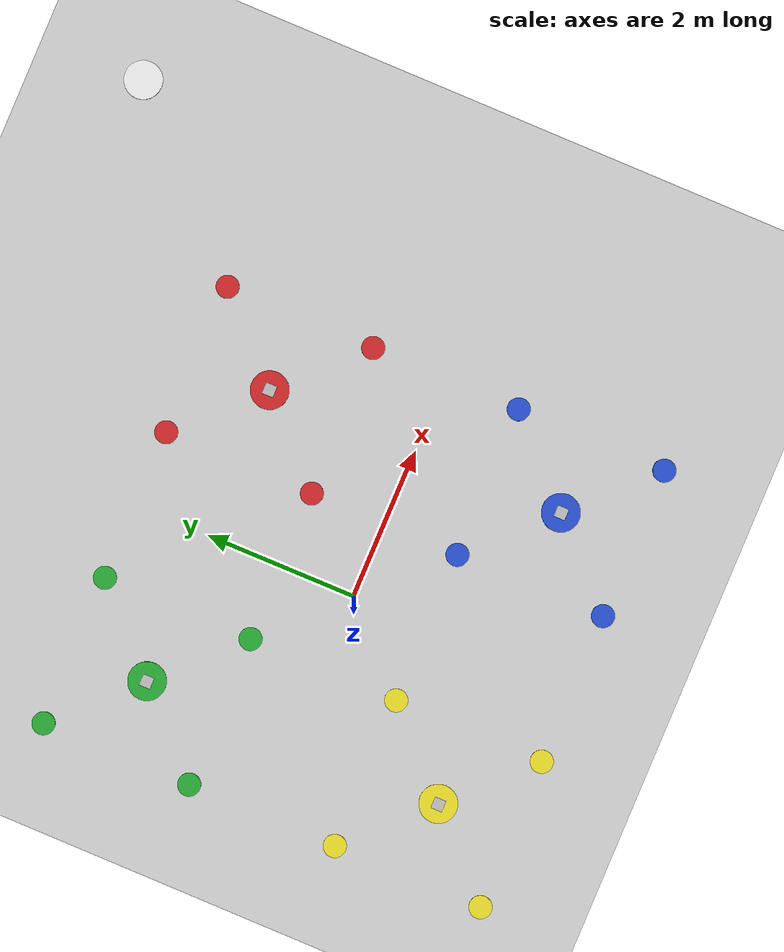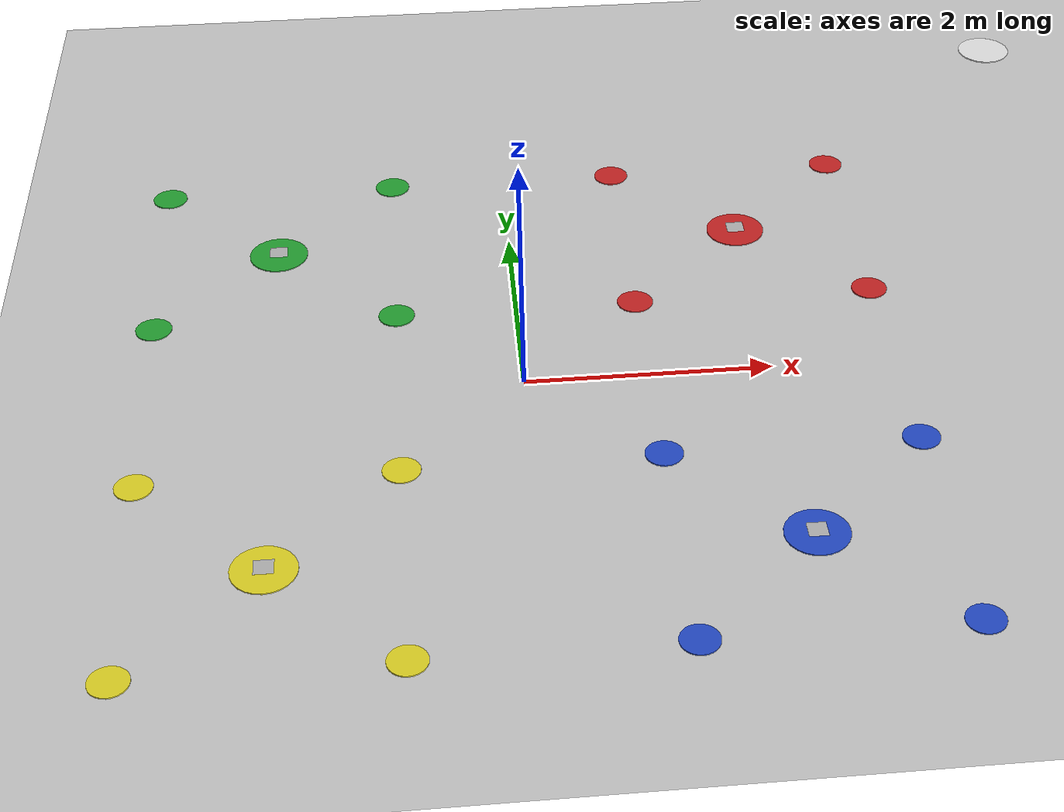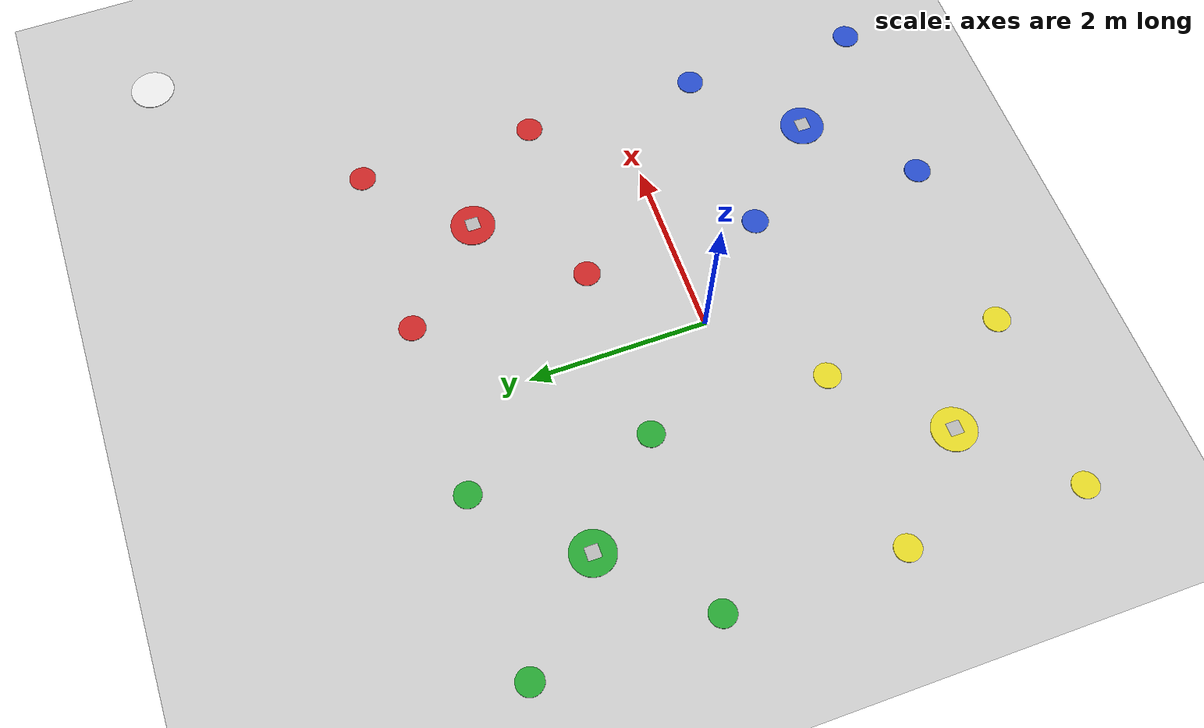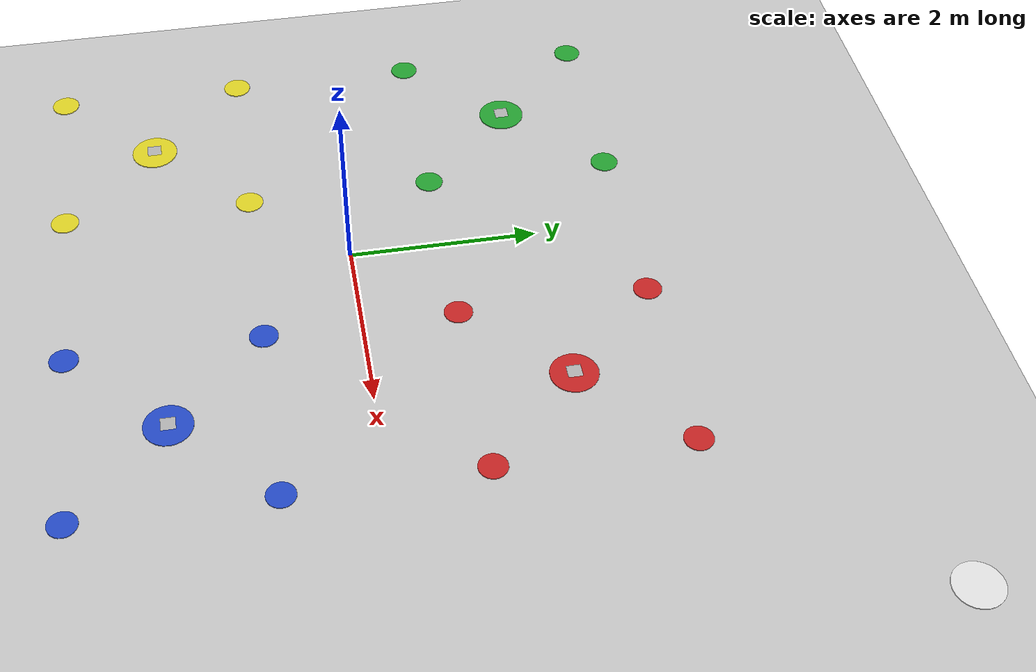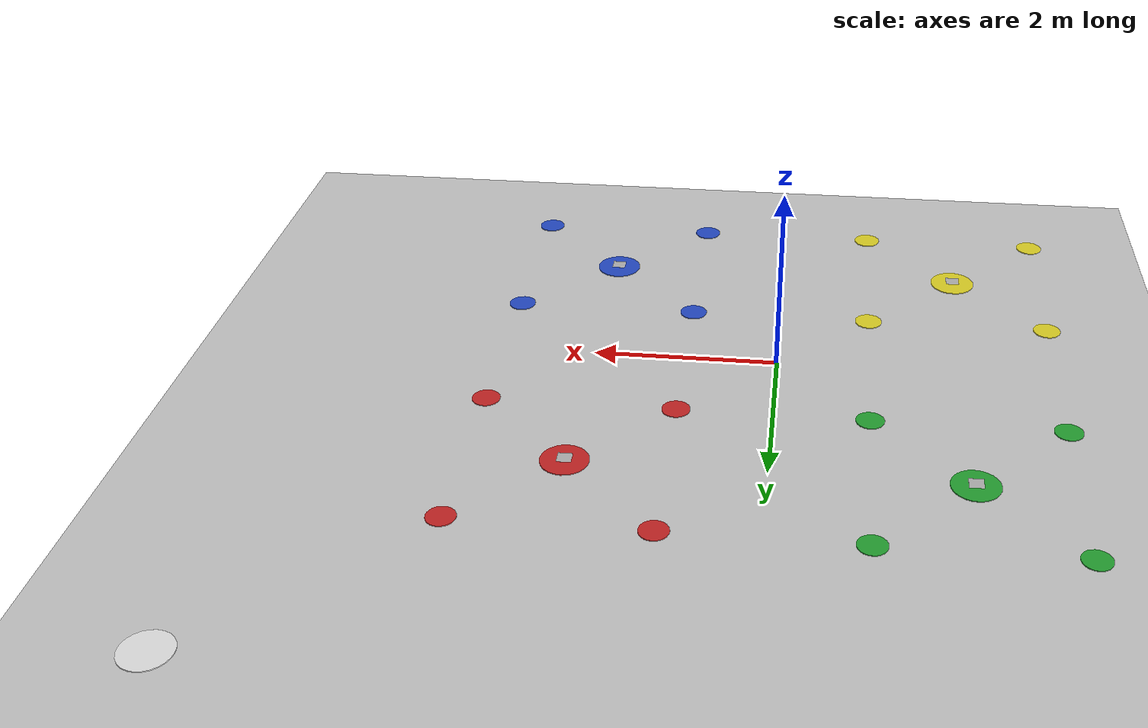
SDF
<sdf version="1.6">
 <world name="default">
  <include><uri>model://sun</uri></include>
  <scene><shadows>0</shadows><grid>0</grid><origin_visual>1</origin_visual></scene>
  <include><uri>model://ground_plane</uri></include>
  <physics type="ode">
   <real_time_update_rate>1000.0</real_time_update_rate>
   <max_step_size>0.001</max_step_size>
   <real_time_factor>1</real_time_factor>
   <ode>
    <solver>
     <type>quick</type>
     <iters>150</iters>
     <precon_iters>0</precon_iters>
     <sor>1.400000</sor>
     <use_dynamic_moi_rescaling>1</use_dynamic_moi_rescaling>
    </solver>
    <constraints>
     <cfm>0.00001</cfm>
     <erp>0.2</erp>
     <contact_max_correcting_vel>2000.000000</contact_max_correcting_vel>
     <contact_surface_layer>0.01000</contact_surface_layer>
    </constraints>
   </ode>
  </physics>
  <model name="ros_symbol">
   <static>1</static>
   <link name="symbol">
    <visual name="yellow_dot">
     <pose>-2.0 -2.0 0.0 0 0 0</pose>
     <geometry><cylinder><radius>0.25</radius><length>0.01</length></cylinder></geometry>
     <material>
      <script><uri>file://media/materials/scripts/gazebo.material</uri><name>Gazebo/Yellow</name></script>
     </material>
    </visual>
    <visual name="yellow_dot_one">
     <pose>-1.0 -1.0 0.0 0 0 0</pose>
     <geometry><cylinder><radius>0.15</radius><length>0.01</length></cylinder></geometry>
     <material>
      <script><uri>file://media/materials/scripts/gazebo.material</uri><name>Gazebo/Yellow</name></script>
     </material>
    </visual>
    <visual name="yellow_dot_two">
     <pose>-1.0 -3.0 0.0 0 0 0</pose>
     <geometry><cylinder><radius>0.15</radius><length>0.01</length></cylinder></geometry>
     <material>
      <script><uri>file://media/materials/scripts/gazebo.material</uri><name>Gazebo/Yellow</name></script>
     </material>
    </visual>
    <visual name="yellow_dot_three">
     <pose>-3.0 -3.0 0.0 0 0 0</pose>
     <geometry><cylinder><radius>0.15</radius><length>0.01</length></cylinder></geometry>
     <material>
      <script><uri>file://media/materials/scripts/gazebo.material</uri><name>Gazebo/Yellow</name></script>
     </material>
    </visual>
    <visual name="yellow_dot_four">
     <pose>-3.0 -1.0 0.0 0 0 0</pose>
     <geometry><cylinder><radius>0.15</radius><length>0.01</length></cylinder></geometry>
     <material>
      <script><uri>file://media/materials/scripts/gazebo.material</uri><name>Gazebo/Yellow</name></script>
     </material>
    </visual>
    <visual name="blue_dot">
     <pose>2.0 -2.0 0.0 0 0 0</pose>
     <geometry><cylinder><radius>0.25</radius><length>0.01</length></cylinder></geometry>
     <material>
      <script><uri>file://media/materials/scripts/gazebo.material</uri><name>Gazebo/Blue</name></script>
     </material>
    </visual>
    <visual name="blue_dot_one">
     <pose>1.0 -1.0 0.0 0 0 0</pose>
     <geometry><cylinder><radius>0.15</radius><length>0.01</length></cylinder></geometry>
     <material>
      <script><uri>file://media/materials/scripts/gazebo.material</uri><name>Gazebo/Blue</name></script>
     </material>
    </visual>
    <visual name="blue_dot_two">
     <pose>1.0 -3.0 0.0 0 0 0</pose>
     <geometry><cylinder><radius>0.15</radius><length>0.01</length></cylinder></geometry>
     <material>
      <script><uri>file://media/materials/scripts/gazebo.material</uri><name>Gazebo/Blue</name></script>
     </material>
    </visual>
    <visual name="blue_dot_three">
     <pose>3.0 -1.0 0.0 0 0 0</pose>
     <geometry><cylinder><radius>0.15</radius><length>0.01</length></cylinder></geometry>
     <material>
      <script><uri>file://media/materials/scripts/gazebo.material</uri><name>Gazebo/Blue</name></script>
     </material>
    </visual>
    <visual name="blue_dot_four">
     <pose>3.0 -3.0 0.0 0 0 0</pose>
     <geometry><cylinder><radius>0.15</radius><length>0.01</length></cylinder></geometry>
     <material>
      <script><uri>file://media/materials/scripts/gazebo.material</uri><name>Gazebo/Blue</name></script>
     </material>
    </visual>
    <visual name="red_dot">
     <pose>2.0 2.0 0.0 0 0 0</pose>
     <geometry><cylinder><radius>0.25</radius><length>0.01</length></cylinder></geometry>
     <material>
      <script><uri>file://media/materials/scripts/gazebo.material</uri><name>Gazebo/Red</name></script>
     </material>
    </visual>
    <visual name="red_dot_one">
     <pose>1.0 1.0 0.0 0 0 0</pose>
     <geometry><cylinder><radius>0.15</radius><length>0.01</length></cylinder></geometry>
     <material>
      <script><uri>file://media/materials/scripts/gazebo.material</uri><name>Gazebo/Red</name></script>
     </material>
    </visual>
    <visual name="red_dot_two">
     <pose>1.0 3.0 0.0 0 0 0</pose>
     <geometry><cylinder><radius>0.15</radius><length>0.01</length></cylinder></geometry>
     <material>
      <script><uri>file://media/materials/scripts/gazebo.material</uri><name>Gazebo/Red</name></script>
     </material>
    </visual>
    <visual name="red_dot_three">
     <pose>3.0 1.0 0.0 0 0 0</pose>
     <geometry><cylinder><radius>0.15</radius><length>0.01</length></cylinder></geometry>
     <material>
      <script><uri>file://media/materials/scripts/gazebo.material</uri><name>Gazebo/Red</name></script>
     </material>
    </visual>
    <visual name="red_dot_four">
     <pose>3.0 3.0 0.0 0 0 0</pose>
     <geometry><cylinder><radius>0.15</radius><length>0.01</length></cylinder></geometry>
     <material>
      <script><uri>file://media/materials/scripts/gazebo.material</uri><name>Gazebo/Red</name></script>
     </material>
    </visual>
    <visual name="green_dot">
     <pose>-2.0 2.0 0.0 0 0 0</pose>
     <geometry><cylinder><radius>0.25</radius><length>0.01</length></cylinder></geometry>
     <material>
      <script><uri>file://media/materials/scripts/gazebo.material</uri><name>Gazebo/Green</name></script>
     </material>
    </visual>
    <visual name="green_dot_one">
     <pose>-1.0 1.0 0.0 0 0 0</pose>
     <geometry><cylinder><radius>0.15</radius><length>0.01</length></cylinder></geometry>
     <material>
      <script><uri>file://media/materials/scripts/gazebo.material</uri><name>Gazebo/Green</name></script>
     </material>
    </visual>
    <visual name="green_dot_two">
     <pose>-1.0 3.0 0.0 0 0 0</pose>
     <geometry><cylinder><radius>0.15</radius><length>0.01</length></cylinder></geometry>
     <material>
      <script><uri>file://media/materials/scripts/gazebo.material</uri><name>Gazebo/Green</name></script>
     </material>
    </visual>
    <visual name="green_dot_three">
     <pose>-3.0 1.0 0.0 0 0 0</pose>
     <geometry><cylinder><radius>0.15</radius><length>0.01</length></cylinder></geometry>
     <material>
      <script><uri>file://media/materials/scripts/gazebo.material</uri><name>Gazebo/Green</name></script>
     </material>
    </visual>
    <visual name="green_dot_four">
     <pose>-3.0 3.0 0.0 0 0 0</pose>
     <geometry><cylinder><radius>0.15</radius><length>0.01</length></cylinder></geometry>
     <material>
      <script><uri>file://media/materials/scripts/gazebo.material</uri><name>Gazebo/Green</name></script>
     </material>
    </visual>
    <visual name="white_dot">
     <pose>5.0 5.0 0.0 0 0 0</pose>
     <geometry><cylinder><radius>0.25</radius><length>0.01</length></cylinder></geometry>
     <material>
      <script><uri>file://media/materials/scripts/gazebo.material</uri><name>Gazebo/White</name></script>
     </material>
    </visual>
   </link>
  </model>
  <model name="one">
   <static>1</static>
   <include><uri>model://one</uri><pose>2 2 0.03 0 -1.57 0</pose></include>
  </model>
  <model name="two">
   <static>1</static>
   <include><uri>model://two</uri><pose>-2.0 -2.0 0.03 0 -1.57 0</pose></include>
  </model>
  <model name="three">
   <static>1</static>
   <include><uri>model://three</uri><pose>-2.0 2.0 0.03 0 -1.57 0</pose></include>
  </model>
  <model name="four">
   <static>1</static>
   <include><uri>model://four</uri><pose>2.0 -2.0 0.03 0 -1.57 0</pose></include>
  </model>
 </world>
</sdf>

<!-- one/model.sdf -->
<sdf version="1.6">
  <model name="one">
    <static>false</static>
    <link name="link">
      <gravity>false</gravity>
      <inertial>
        <pose>0 0 0 0 0 0</pose>
        <mass>0.001</mass>
        <inertia>
          <ixx>3.7499999999999997e-06</ixx>
          <ixy>0.0</ixy>
          <ixz>0.0</ixz>
          <iyy>1.8750008333333333e-06</iyy>
          <iyz>0.0</iyz>
          <izz>1.8750008333333333e-06</izz>
        </inertia>
      </inertial>
      <visual name="front_visual">
        <pose>0.00005 0 0 0 0 0</pose>
        <geometry>
          <box>
            <size>0.0001 0.15 0.15</size>
          </box>
        </geometry>
        <material>
          <script>
            <uri>model://one/materials/scripts</uri>
            <uri>model://one/materials/textures</uri>
            <name>one</name>
          </script>
        </material>
      </visual>
      <!-- Hide the marker from the back -->
      <visual name="rear_visual">
        <pose>-0.00005 0 0 0 0 0</pose>
        <geometry>
          <box>
            <size>0.0001 0.15 0.15</size>
          </box>
        </geometry>
      </visual>
    </link>
  </model>
</sdf>

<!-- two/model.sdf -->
<sdf version="1.6">
  <model name="two">
    <static>false</static>
    <link name="link">
      <gravity>false</gravity>
      <inertial>
        <pose>0 0 0 0 0 0</pose>
        <mass>0.001</mass>
        <inertia>
          <ixx>3.7499999999999997e-06</ixx>
          <ixy>0.0</ixy>
          <ixz>0.0</ixz>
          <iyy>1.8750008333333333e-06</iyy>
          <iyz>0.0</iyz>
          <izz>1.8750008333333333e-06</izz>
        </inertia>
      </inertial>
      <visual name="front_visual">
        <pose>0.00005 0 0 0 0 0</pose>
        <geometry>
          <box>
            <size>0.0001 0.15 0.15</size>
          </box>
        </geometry>
        <material>
          <script>
            <uri>model://two/materials/scripts</uri>
            <uri>model://two/materials/textures</uri>
            <name>two</name>
          </script>
        </material>
      </visual>
      <!-- Hide the marker from the back -->
      <visual name="rear_visual">
        <pose>-0.00005 0 0 0 0 0</pose>
        <geometry>
          <box>
            <size>0.0001 0.15 0.15</size>
          </box>
        </geometry>
      </visual>
    </link>
  </model>
</sdf>

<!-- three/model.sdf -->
<sdf version="1.6">
  <model name="three">
    <static>false</static>
    <link name="link">
      <gravity>false</gravity>
      <inertial>
        <pose>0 0 0 0 0 0</pose>
        <mass>0.001</mass>
        <inertia>
          <ixx>3.7499999999999997e-06</ixx>
          <ixy>0.0</ixy>
          <ixz>0.0</ixz>
          <iyy>1.8750008333333333e-06</iyy>
          <iyz>0.0</iyz>
          <izz>1.8750008333333333e-06</izz>
        </inertia>
      </inertial>
      <visual name="front_visual">
        <pose>0.00005 0 0 0 0 0</pose>
        <geometry>
          <box>
            <size>0.0001 0.15 0.15</size>
          </box>
        </geometry>
        <material>
          <script>
            <uri>model://three/materials/scripts</uri>
            <uri>model://three/materials/textures</uri>
            <name>three</name>
          </script>
        </material>
      </visual>
      <!-- Hide the marker from the back -->
      <visual name="rear_visual">
        <pose>-0.00005 0 0 0 0 0</pose>
        <geometry>
          <box>
            <size>0.0001 0.15 0.15</size>
          </box>
        </geometry>
      </visual>
    </link>
  </model>
</sdf>

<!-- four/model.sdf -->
<sdf version="1.6">
  <model name="four">
    <static>false</static>
    <link name="link">
      <gravity>false</gravity>
      <inertial>
        <pose>0 0 0 0 0 0</pose>
        <mass>0.001</mass>
        <inertia>
          <ixx>3.7499999999999997e-06</ixx>
          <ixy>0.0</ixy>
          <ixz>0.0</ixz>
          <iyy>1.8750008333333333e-06</iyy>
          <iyz>0.0</iyz>
          <izz>1.8750008333333333e-06</izz>
        </inertia>
      </inertial>
      <visual name="front_visual">
        <pose>0.00005 0 0 0 0 0</pose>
        <geometry>
          <box>
            <size>0.0001 0.15 0.15</size>
          </box>
        </geometry>
        <material>
          <script>
            <uri>model://four/materials/scripts</uri>
            <uri>model://four/materials/textures</uri>
            <name>four</name>
          </script>
        </material>
      </visual>
      <!-- Hide the marker from the back -->
      <visual name="rear_visual">
        <pose>-0.00005 0 0 0 0 0</pose>
        <geometry>
          <box>
            <size>0.0001 0.15 0.15</size>
          </box>
        </geometry>
      </visual>
    </link>
  </model>
</sdf>
